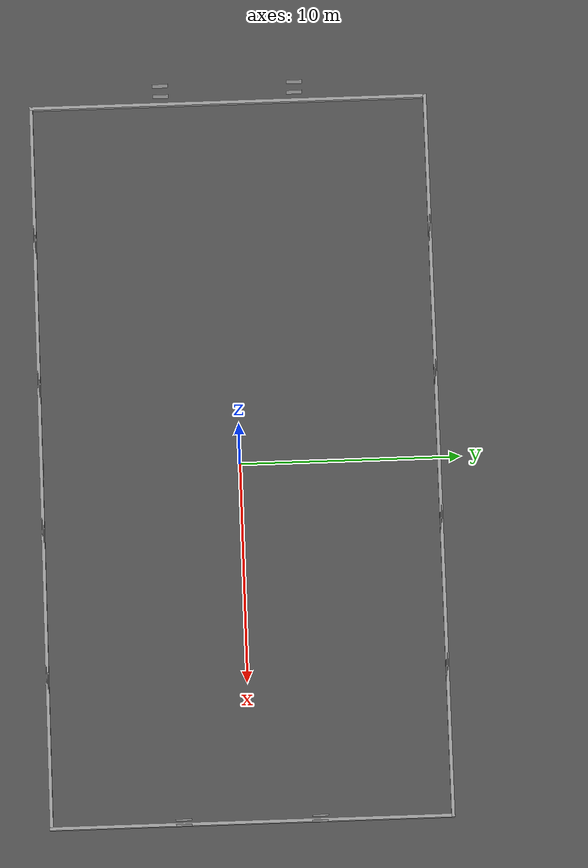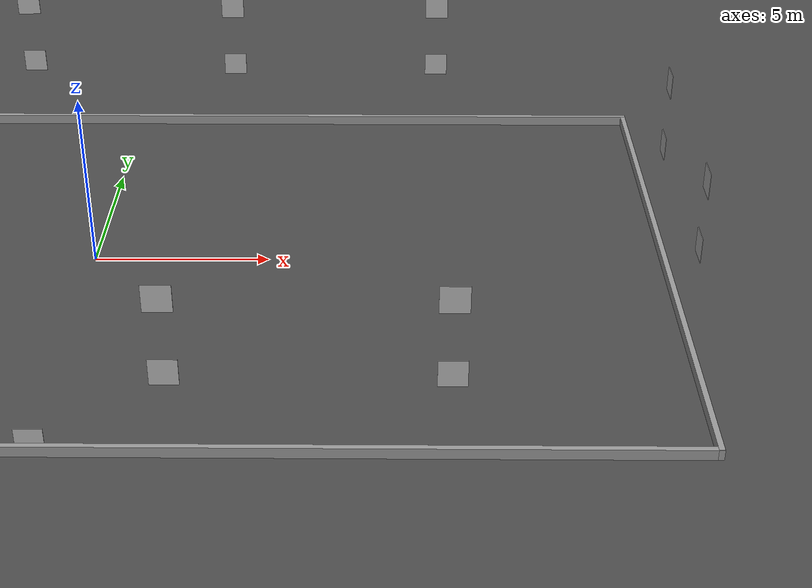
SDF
<?xml version="1.0" ?>
<sdf version="1.6">
  <world name="default">
    <wind>
      <linear_velocity>11 11 0</linear_velocity>
    </wind>
    <scene>
      <shadows>0</shadows>
    </scene>
    <gui>
      <camera name="user_camera">
        <pose>-5 0 1 0 0.2 0</pose>
      </camera>
    </gui>
    <physics type="ode">
      <ode>
        <solver>
          <type>quick</type>
          <iters>100</iters>
          <sor>1.0</sor>
        </solver>
        <constraints>
          <cfm>0.0</cfm>
          <erp>0.2</erp>
          <contact_max_correcting_vel>0.1</contact_max_correcting_vel>
          <contact_surface_layer>0.0</contact_surface_layer>
        </constraints>
      </ode>
      <real_time_update_rate>-1</real_time_update_rate>
    </physics>
    <gravity>0 0 -9.8</gravity>
    <include>
      <uri>model://sun</uri>
    </include>

    <model name="ground_plane">
      <static>true</static>
      <link name="link">
        <collision name="collision">
          <geometry>
            <plane>
              <normal>0 0 1</normal>
              <size>5000 5000</size>
            </plane>
          </geometry>
          <surface>
            <friction>
              <ode>
                <mu>100</mu>
                <mu2>50</mu2>
              </ode>
            </friction>
          </surface>
        </collision>
        <visual name="background">
          <pose>000 0 -.1 0 0 0</pose>
          <cast_shadows>false</cast_shadows>
          <geometry>
            <plane>
              <normal>0 0 1</normal>
              <size>33.25 18</size>
            </plane>
          </geometry>
          <material>
            <script>
              <uri>file://media/materials/scripts/gazebo.material</uri>
              <name>Gazebo/Road</name>
            </script>
          </material>
        </visual>
      </link>
    </model>

    <model name='SDC_WALL'>
          <static>true</static>
     <pose>14.212168 -1.148057 0 0 0 0</pose>
    <include>
      <uri>model://SDC_WALL</uri>
      </include>

    </model>

      <model name='AR_00'>
        <pose>0 -8.895 0 0 -0 1.5708</pose>
        <scale>1 1 1</scale>
      <include>
      <uri>model://ar_00</uri>
      </include>
      </model>
      <model name='AR_01'>
        <pose>16.625 3.025 2.6 3.14159 -0 0</pose>
        <scale>1 1 1</scale>
           <include>
      <uri>model://ar_01</uri>
      </include>
      </model>
      <model name='AR_02'>
        <pose>16.625 3.025 4.6 3.14159 -0 0</pose>
        <scale>1 1 1</scale>
       <include>
      <uri>model://ar_02</uri>
      </include>
      </model>
      <model name='AR_03'>
        <pose>16.625 -3.025 2.7 3.14159 -0 0</pose>
        <scale>1 1 1</scale>
          <include>
      <uri>model://ar_03</uri>
      </include>
      </model>
      <model name='AR_04'>
        <pose>16.625 -3.025 4.6 3.14159 -0 0</pose>
        <scale>1 1 1</scale>
          <include>
      <uri>model://ar_04</uri>
      </include>
      </model>
      <model name='AR_05'>
        <pose>9.975 -8.895 2 0 -0 1.5708</pose>
        <scale>1 1 1</scale>
      <include>
      <uri>model://ar_05</uri>
      </include>
      </model>
      <model name='AR_06'>
        <pose>9.975 -8.895 4 0 -0 1.5708</pose>
        <scale>1 1 1</scale>
        <include>
      <uri>model://ar_06</uri>
      </include>
      </model>
      <model name='AR_07'>
        <pose>3.325 -8.895 2 0 -0 1.5708</pose>
        <scale>1 1 1</scale>
          <include>
      <uri>model://ar_07</uri>
      </include>
      </model>
      <model name='AR_08'>
        <pose>3.325 -8.895 4 0 -0 1.5708</pose>
        <scale>1 1 1</scale>
          <include>
      <uri>model://ar_08</uri>
      </include>
      </model>
      <model name='AR_09'>
        <pose>-3.325 -8.895 2 0 -0 1.5708</pose>
        <scale>1 1 1</scale>
          <include>
      <uri>model://ar_09</uri>
      </include>
      </model>
      <model name='AR_10'>
        <pose>-3.325 -8.895 4 0 -0 1.5708</pose>
        <scale>1 1 1</scale>
       <include>
      <uri>model://ar_10</uri>
      </include>
      </model>
      <model name='AR_11'>
        <pose>-9.975 -8.895 2 0 -0 1.5708</pose>
        <scale>1 1 1</scale>
        <include>
      <uri>model://ar_11</uri>
      </include>
      </model>
      <model name='AR_12'>
        <pose>-9.975 -8.895 4 0 -0 1.5708</pose>
        <scale>1 1 1</scale>
      <include>
      <uri>model://ar_12</uri>
      </include>
      </model>
      <model name='AR_13'>
        <pose>-16.625 -3.025 2 0 -0 0</pose>
        <scale>1 1 1</scale>
       <include>
      <uri>model://ar_13</uri>
      </include>
      </model>
      <model name='AR_14'>
        <pose>-16.625 -3.025 4 0 -0 0</pose>
        <scale>1 1 1</scale>
        <include>
      <uri>model://ar_14</uri>
      </include>
      </model>
      <model name='AR_15'>
        <pose>-16.625 3.025 4 0 -0 0</pose>
        <scale>1 1 1</scale>
       <include>
      <uri>model://ar_15</uri>
      </include>
      </model>
      <model name='AR_16'>
        <pose>-16.625 3.025 2 0 -0 0</pose>
        <scale>1 1 1</scale>
      <include>
      <uri>model://ar_16</uri>
      </include>
      </model>
      <model name='AR_17'>
        <pose>-9.975 8.895 2.6 3.14159 0 1.6208</pose>
        <scale>1 1 1</scale>
       <include>
      <uri>model://ar_17</uri>
      </include>
      </model>
      <model name='AR_18'>
        <pose>-9.975 8.895 4.6 3.14159 -0 1.5708</pose>
        <scale>1 1 1</scale>
      <include>
      <uri>model://ar_18</uri>
      </include>
      </model>
      <model name='AR_19'>
        <pose>-3.325 8.895 2.7 3.14159 -0 1.5708</pose>
        <scale>1 1 1</scale>
      <include>
      <uri>model://ar_19</uri>
      </include>
      </model>
      <model name='AR_20'>
        <pose>-3.325 8.895 4.7 3.13159 -0 1.5708</pose>
        <scale>1 1 1</scale>
    <include>
      <uri>model://ar_20</uri>
      </include>
      </model>
      <model name='AR_21'>
        <pose>3.325 8.895 2.6 3.14159 -0 1.5708</pose>
        <scale>1 1 1</scale>
       <include>
      <uri>model://ar_21</uri>
      </include>
      </model>
      <model name='AR_22'>
        <pose>3.325 8.895 4.6 3.14159 -0 1.5708</pose>
        <scale>1 1 1</scale>
          <include>
      <uri>model://ar_22</uri>
      </include>
      </model>
      <model name='AR_23'>
        <pose>9.975 8.895 2.6 3.14159 -0 1.5708</pose>
        <scale>1 1 1</scale>
       <include>
      <uri>model://ar_23</uri>
      </include>
      </model>
      <model name='AR_24'>
        <pose>9.975 8.895 4.6 3.14159 -0 1.5708</pose>
        <scale>1 1 1</scale>
       <include>
      <uri>model://ar_24</uri>
      </include>
      </model>

  </world>
</sdf>

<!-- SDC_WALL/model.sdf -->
<sdf version='1.7'>
  <model name='SDC_WALL'>
    <pose>-14.4161 1.16088 0 0 -0 0</pose>
    <link name='Wall_2'>
      <collision name='Wall_2_Collision'>
        <geometry>
          <box>
            <size>18.15 0.15 0.3</size>
          </box>
        </geometry>
        <pose>0 0 0.15 0 -0 0</pose>
      </collision>
      <visual name='Wall_2_Visual'>
        <pose>0 0 0.15 0 -0 0</pose>
        <geometry>
          <box>
            <size>18.15 0.15 0.3</size>
          </box>
        </geometry>
        <material>
          <script>
            <uri>file://media/materials/scripts/gazebo.material</uri>
            <name>Gazebo/Grey</name>
          </script>
          <ambient>1 1 1 1</ambient>
        </material>
        <meta>
          <layer>0</layer>
        </meta>
      </visual>
      <pose>-16.5504 -0.000382 0 0 -0 1.5708</pose>
    </link>
    <link name='Wall_3'>
      <collision name='Wall_3_Collision'>
        <geometry>
          <box>
            <size>33.25 0.15 0.3</size>
          </box>
        </geometry>
        <pose>0 0 0.15 0 -0 0</pose>
      </collision>
      <visual name='Wall_3_Visual'>
        <pose>0 0 0.15 0 -0 0</pose>
        <geometry>
          <box>
            <size>33.25 0.15 0.3</size>
          </box>
        </geometry>
        <material>
          <script>
            <uri>file://media/materials/scripts/gazebo.material</uri>
            <name>Gazebo/Grey</name>
          </script>
          <ambient>1 1 1 1</ambient>
        </material>
        <meta>
          <layer>0</layer>
        </meta>
      </visual>
      <pose>-0.000129 8.99987 0 0 -0 1.5e-05</pose>
    </link>
    <link name='Wall_4'>
      <collision name='Wall_4_Collision'>
        <geometry>
          <box>
            <size>18.1505 0.15 0.3</size>
          </box>
        </geometry>
        <pose>0 0 0.15 0 -0 0</pose>
      </collision>
      <visual name='Wall_4_Visual'>
        <pose>0 0 0.15 0 -0 0</pose>
        <geometry>
          <box>
            <size>18.1505 0.15 0.3</size>
          </box>
        </geometry>
        <material>
          <script>
            <uri>file://media/materials/scripts/gazebo.material</uri>
            <name>Gazebo/Grey</name>
          </script>
          <ambient>1 1 1 1</ambient>
        </material>
        <meta>
          <layer>0</layer>
        </meta>
      </visual>
      <pose>16.5501 0.000116 0 0 -0 -1.5708</pose>
    </link>
    <link name='Wall_5'>
      <collision name='Wall_5_Collision'>
        <geometry>
          <box>
            <size>33.2505 0.15 0.3</size>
          </box>
        </geometry>
        <pose>0 0 0.15 0 -0 0</pose>
      </collision>
      <visual name='Wall_5_Visual'>
        <pose>0 0 0.15 0 -0 0</pose>
        <geometry>
          <box>
            <size>33.2505 0.15 0.3</size>
          </box>
        </geometry>
        <material>
          <script>
            <uri>file://media/materials/scripts/gazebo.material</uri>
            <name>Gazebo/Grey</name>
          </script>
          <ambient>1 1 1 1</ambient>
        </material>
        <meta>
          <layer>0</layer>
        </meta>
      </visual>
      <pose>0.000119 -8.99738 0 0 -0 3.14144</pose>
    </link>
    <static>1</static>
  </model>
</sdf>

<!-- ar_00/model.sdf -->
<sdf version="1.6">
  <model name="AR_00">
    <static>true</static>
    <link name="link">
      <visual name="visual">
        <geometry>
          <mesh>
            <uri>model://ar_00/meshes/AR_00.dae</uri>
          <scale>1.42 1.42 1.42</scale></mesh>
        </geometry>
      </visual>
    </link>
  </model>
</sdf>

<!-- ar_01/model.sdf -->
<sdf version="1.6">
  <model name="AR_01">
    <static>true</static>
    <link name="link">
      <visual name="visual">
        <geometry>
          <mesh>
            <uri>model://ar_01/meshes/AR_01.dae</uri>
          <scale>1.42 1.42 1.42</scale></mesh>
        </geometry>
      </visual>
    </link>
  </model>
</sdf>

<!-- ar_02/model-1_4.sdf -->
<sdf version="1.4">
  <model name="AR_02">
    <static>true</static>
    <link name="link">
      <visual name="visual">
        <geometry>
          <mesh>
            <uri>model://ar_02/meshes/AR_02.dae</uri>
          <scale>1.42 1.42 1.42</scale></mesh>
        </geometry>
      </visual>
    </link>
  </model>
</sdf>

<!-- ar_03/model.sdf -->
<sdf version="1.6">
  <model name="AR_03">
    <static>true</static>
    <link name="link">
      <visual name="visual">
        <geometry>
          <mesh>
            <uri>model://ar_03/meshes/AR_03.dae</uri>
          <scale>1.42 1.42 1.42</scale></mesh>
        </geometry>
      </visual>
    </link>
  </model>
</sdf>

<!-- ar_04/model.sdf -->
<sdf version="1.6">
  <model name="AR_04">
    <static>true</static>
    <link name="link">
      <visual name="visual">
        <geometry>
          <mesh>
            <uri>model://ar_04/meshes/AR_04.dae</uri>
          <scale>1.42 1.42 1.42</scale></mesh>
        </geometry>
      </visual>
    </link>
  </model>
</sdf>

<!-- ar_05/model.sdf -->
<sdf version="1.6">
  <model name="AR_05">
    <static>true</static>
    <link name="link">
      <visual name="visual">
        <geometry>
          <mesh>
            <uri>model://ar_05/meshes/AR_05.dae</uri>
          <scale>1.42 1.42 1.42</scale></mesh>
        </geometry>
      </visual>
    </link>
  </model>
</sdf>

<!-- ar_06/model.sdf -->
<sdf version="1.6">
  <model name="AR_06">
    <static>true</static>
    <link name="link">
      <visual name="visual">
        <geometry>
          <mesh>
            <uri>model://ar_06/meshes/AR_06.dae</uri>
          <scale>1.42 1.42 1.42</scale></mesh>
        </geometry>
      </visual>
    </link>
  </model>
</sdf>

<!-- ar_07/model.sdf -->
<sdf version="1.6">
  <model name="AR_07">
    <static>true</static>
    <link name="link">
      <visual name="visual">
        <geometry>
          <mesh>
            <uri>model://ar_07/meshes/AR_07.dae</uri>
          <scale>1.42 1.42 1.42</scale></mesh>
        </geometry>
      </visual>
    </link>
  </model>
</sdf>

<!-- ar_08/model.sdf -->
<sdf version="1.6">
  <model name="AR_08">
    <static>true</static>
    <link name="link">
      <visual name="visual">
        <geometry>
          <mesh>
            <uri>model://ar_08/meshes/AR_08.dae</uri>
          <scale>1.42 1.42 1.42</scale></mesh>
        </geometry>
      </visual>
    </link>
  </model>
</sdf>

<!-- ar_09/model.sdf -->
<sdf version="1.6">
  <model name="AR_09">
    <static>true</static>
    <link name="link">
      <visual name="visual">
        <geometry>
          <mesh>
            <uri>model://ar_09/meshes/AR_09.dae</uri>
          <scale>1.42 1.42 1.42</scale></mesh>
        </geometry>
      </visual>
    </link>
  </model>
</sdf>

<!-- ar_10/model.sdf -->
<sdf version="1.6">
  <model name="AR_10">
    <static>true</static>
    <link name="link">
      <visual name="visual">
        <geometry>
          <mesh>
            <uri>model://ar_10/meshes/AR_10.dae</uri>
          <scale>1.42 1.42 1.42</scale></mesh>
        </geometry>
      </visual>
    </link>
  </model>
</sdf>

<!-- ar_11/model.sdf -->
<sdf version="1.6">
  <model name="AR_11">
    <static>true</static>
    <link name="link">
      <visual name="visual">
        <geometry>
          <mesh>
            <uri>model://ar_11/meshes/AR_11.dae</uri>
          <scale>1.42 1.42 1.42</scale></mesh>
        </geometry>
      </visual>
    </link>
  </model>
</sdf>

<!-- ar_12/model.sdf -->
<sdf version="1.6">
  <model name="AR_12">
    <static>true</static>
    <link name="link">
      <visual name="visual">
        <geometry>
          <mesh>
            <uri>model://ar_12/meshes/AR_12.dae</uri>
          <scale>1.42 1.42 1.42</scale></mesh>
        </geometry>
      </visual>
    </link>
  </model>
</sdf>

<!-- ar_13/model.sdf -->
<sdf version="1.6">
  <model name="AR_13">
    <static>true</static>
    <link name="link">
      <visual name="visual">
        <geometry>
          <mesh>
            <uri>model://ar_13/meshes/AR_13.dae</uri>
          <scale>1.42 1.42 1.42</scale></mesh>
        </geometry>
      </visual>
    </link>
  </model>
</sdf>

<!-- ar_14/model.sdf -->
<sdf version="1.6">
  <model name="AR_14">
    <static>true</static>
    <link name="link">
      <visual name="visual">
        <geometry>
          <mesh>
            <uri>model://ar_14/meshes/AR_14.dae</uri>
          <scale>1.42 1.42 1.42</scale></mesh>
        </geometry>
      </visual>
    </link>
  </model>
</sdf>

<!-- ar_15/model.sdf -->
<sdf version="1.6">
  <model name="AR_15">
    <static>true</static>
    <link name="link">
      <visual name="visual">
        <geometry>
          <mesh>
            <uri>model://ar_15/meshes/AR_15.dae</uri>
          <scale>1.42 1.42 1.42</scale></mesh>
        </geometry>
      </visual>
    </link>
  </model>
</sdf>

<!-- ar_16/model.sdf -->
<sdf version="1.6">
  <model name="AR_16">
    <static>true</static>
    <link name="link">
      <visual name="visual">
        <geometry>
          <mesh>
            <uri>model://ar_16/meshes/AR_16.dae</uri>
          <scale>1.42 1.42 1.42</scale></mesh>
        </geometry>
      </visual>
    </link>
  </model>
</sdf>

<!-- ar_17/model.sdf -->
<sdf version="1.6">
  <model name="AR_17">
    <static>true</static>
    <link name="link">
      <visual name="visual">
        <geometry>
          <mesh>
            <uri>model://ar_17/meshes/AR_17.dae</uri>
          <scale>1.42 1.42 1.42</scale></mesh>
        </geometry>
      </visual>
    </link>
  </model>
</sdf>

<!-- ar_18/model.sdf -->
<sdf version="1.6">
  <model name="AR_18">
    <static>true</static>
    <link name="link">
      <visual name="visual">
        <geometry>
          <mesh>
            <uri>model://ar_18/meshes/AR_18.dae</uri>
          <scale>1.42 1.42 1.42</scale></mesh>
        </geometry>
      </visual>
    </link>
  </model>
</sdf>

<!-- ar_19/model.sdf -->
<sdf version="1.6">
  <model name="AR_19">
    <static>true</static>
    <link name="link">
      <visual name="visual">
        <geometry>
          <mesh>
            <uri>model://ar_19/meshes/AR_19.dae</uri>
          <scale>1.42 1.42 1.42</scale></mesh>
        </geometry>
      </visual>
    </link>
  </model>
</sdf>

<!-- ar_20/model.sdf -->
<sdf version="1.6">
  <model name="AR_20">
    <static>true</static>
    <link name="link">
      <visual name="visual">
        <geometry>
          <mesh>
            <uri>model://ar_20/meshes/AR_20.dae</uri>
          <scale>1.42 1.42 1.42</scale></mesh>
        </geometry>
      </visual>
    </link>
  </model>
</sdf>

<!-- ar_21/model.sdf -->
<sdf version="1.6">
  <model name="AR_21">
    <static>true</static>
    <link name="link">
      <visual name="visual">
        <geometry>
          <mesh>
            <uri>model://ar_21/meshes/AR_21.dae</uri>
          <scale>1.42 1.42 1.42</scale></mesh>
        </geometry>
      </visual>
    </link>
  </model>
</sdf>

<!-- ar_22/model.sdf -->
<sdf version="1.6">
  <model name="AR_22">
    <static>true</static>
    <link name="link">
      <visual name="visual">
        <geometry>
          <mesh>
            <uri>model://ar_22/meshes/AR_22.dae</uri>
          <scale>1.42 1.42 1.42</scale></mesh>
        </geometry>
      </visual>
    </link>
  </model>
</sdf>

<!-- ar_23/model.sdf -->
<sdf version="1.6">
  <model name="AR_23">
    <static>true</static>
    <link name="link">
      <visual name="visual">
        <geometry>
          <mesh>
            <uri>model://ar_23/meshes/AR_23.dae</uri>
          <scale>1.42 1.42 1.42</scale></mesh>
        </geometry>
      </visual>
    </link>
  </model>
</sdf>

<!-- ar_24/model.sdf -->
<sdf version="1.6">
  <model name="AR_24">
    <static>true</static>
    <link name="link">
      <visual name="visual">
        <geometry>
          <mesh>
            <uri>model://ar_24/meshes/AR_24.dae</uri>
          <scale>1.42 1.42 1.42</scale></mesh>
        </geometry>
      </visual>
    </link>
  </model>
</sdf>
